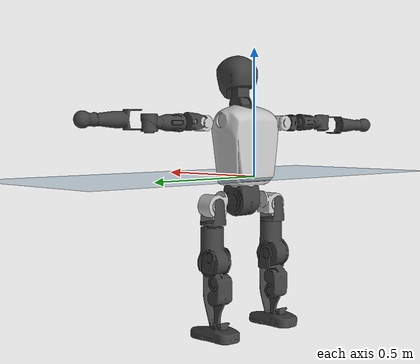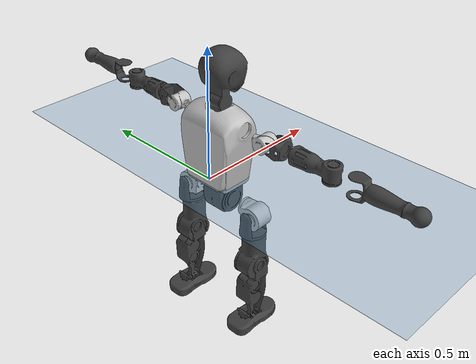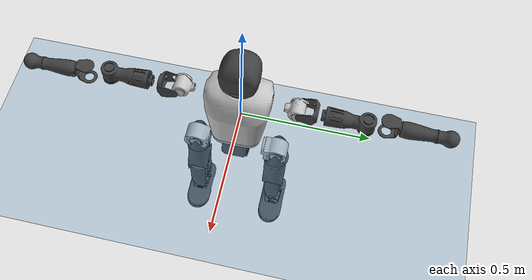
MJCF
<mujoco model="T1">
  <compiler angle="radian" assetdir="assets" balanceinertia="true" inertiafromgeom="false"/>

  <option timestep="0.005" density="1.2" viscosity="2e-05"/>

  <size nkey="1"/>

  <visual>
    <quality shadowsize="8192"/>
    <map shadowclip="0.5"/>
  </visual>

  <default>
    <default class="/">
      <joint armature="0.01" damping="0.01" frictionloss="0.1"/>
      <geom contype="0" conaffinity="0" group="1" solref="-1000 -80"/>
      <site size="0.01 0.005 0.005" group="5"/>
      <general forcelimited="true" biastype="affine" gainprm="25" biasprm="0 -25 -0.6"/>
      <default class="t1">
        <geom rgba="0.25 0.25 0.25 1"/>
        <default class="visual">
          <geom type="mesh" group="2"/>
        </default>
        <default class="collision">
          <geom group="3"/>
        </default>
        <default class="foot">
          <geom size="0.1115 0.05 0.015" type="box" condim="6" group="4" priority="1" solimp="0.015 1 0.015"/>
        </default>
        <default class="reward_collision_sphere">
          <geom group="5" rgba="1 0 0 1"/>
        </default>
      </default>
    </default>
  </default>

  <asset>
    <texture type="skybox" colorspace="auto" name="//unnamed_texture_0" builtin="gradient" rgb1="0.95 0.95 0.95" rgb2="0.95 0.95 0.95" width="100" height="600"/>
    <texture type="2d" colorspace="auto" name="texplane" builtin="checker" rgb1="0.345 0.575 0.748" rgb2="0.345 0.575 0.748" markrgb="1 1 1" width="512" height="512"/>
    <material name="MatPlane" class="/" texture="texplane" texuniform="true" texrepeat="2 2" specular="0.9"/>
    <mesh name="Trunk" class="/" file="Trunk.stl"/>
    <mesh name="H1" class="/" file="H1.stl"/>
    <mesh name="H2" class="/" file="H2.stl"/>
    <mesh name="AL1" class="/" file="AL1.stl"/>
    <mesh name="AL2" class="/" file="AL2.stl"/>
    <mesh name="AL3" class="/" file="AL3.stl"/>
    <mesh name="left_hand_link" class="/" file="left_hand_link.stl"/>
    <mesh name="AR1" class="/" file="AR1.stl"/>
    <mesh name="AR2" class="/" file="AR2.stl"/>
    <mesh name="AR3" class="/" file="AR3.stl"/>
    <mesh name="right_hand_link" class="/" file="right_hand_link.stl"/>
    <mesh name="Waist" class="/" file="Waist.stl"/>
    <mesh name="Hip_Pitch_Left" class="/" file="Hip_Pitch_Left.stl"/>
    <mesh name="Hip_Roll_Left" class="/" file="Hip_Roll_Left.stl"/>
    <mesh name="Hip_Yaw_Left" class="/" file="Hip_Yaw_Left.stl"/>
    <mesh name="Shank_Left" class="/" file="Shank_Left.stl"/>
    <mesh name="Ankle_Cross_Left" class="/" file="Ankle_Cross_Left.stl"/>
    <mesh name="left_foot_link" class="/" file="left_foot_link.stl"/>
    <mesh name="Hip_Pitch_Right" class="/" file="Hip_Pitch_Right.stl"/>
    <mesh name="Hip_Roll_Right" class="/" file="Hip_Roll_Right.stl"/>
    <mesh name="Hip_Yaw_Right" class="/" file="Hip_Yaw_Right.stl"/>
    <mesh name="Shank_Right" class="/" file="Shank_Right.stl"/>
    <mesh name="Ankle_Cross_Right" class="/" file="Ankle_Cross_Right.stl"/>
    <mesh name="right_foot_link" class="/" file="right_foot_link.stl"/>
  </asset>

  <worldbody>
    <geom name="floor" class="/" size="100 100 0.125" type="plane" group="0" material="MatPlane"/>
    <light name="toplight_shadow" class="/" pos="0 0 5" dir="0.0990148 0.0990148 -0.990148" type="directional" ambient="0.04 0.04 0.04" diffuse="0.55 0.55 0.55" specular="0.12 0.12 0.12"/>
    <light name="toplight_fill" class="/" pos="0 0 5" dir="0.0990148 0.0990148 -0.990148" type="directional" castshadow="false" ambient="0.04 0.04 0.04" diffuse="0.3 0.3 0.3" specular="0.08 0.08 0.08"/>
    <body name="trunk" childclass="t1" pos="-0.000450675 0.0022795 0.00183129" quat="1 -0.0007431 -0.000378895 0.000266535">
      <inertial pos="0.0499217 -0.011281 0.0887136" quat="0.999756 -0.00465954 0.014118 -0.0163284" mass="19.4486" diaginertia="0.0996446 0.697136 0.0408678"/>
      <joint name="//unnamed_joint_0" type="free" armature="0" damping="0" frictionloss="0"/>
      <geom name="//unnamed_geom_1" class="visual" rgba="0.76 0.76 0.76 1" mesh="Trunk"/>
      <geom name="//unnamed_geom_2" class="collision" size="0.0870505 0.116067 0.174101" pos="0.0605107 0 0.111604" type="box"/>
      <geom name="//unnamed_geom_3" class="reward_collision_sphere" size="0.133477" pos="0.0605107 0 0.0930033"/>
      <geom name="//unnamed_geom_4" class="reward_collision_sphere" size="0.0174101" pos="0.0605107 0.131195 0"/>
      <geom name="//unnamed_geom_5" class="reward_collision_sphere" size="0.0174101" pos="0.0605107 -0.131195 0"/>
      <geom name="//unnamed_geom_6" class="reward_collision_sphere" size="0.0174101" pos="0.0605107 0.165152 0.167406"/>
      <geom name="//unnamed_geom_7" class="reward_collision_sphere" size="0.0174101" pos="0.0605107 -0.165152 0.167406"/>
      <site name="imu" pos="0.0233149 0.0180331 -0.00434017" size="0.0116067"/>
      <camera name="track" pos="0 -3.08695 0" quat="0.707107 0.707107 0 0" mode="trackcom"/>
      <camera name="ego_camera" pos="0.123039 0 0.390614" quat="-0.5 -0.5 0.5 0.5"/>
      <body name="H1" pos="0.064732 0.00824065 0.216965" quat="1 -4.33284e-05 0.000310805 0.00017241">
        <inertial pos="-0.00230748 -0.0135258 0.053269" quat="0.788867 0.00428974 -0.00412101 0.614535" mass="0.738788" diaginertia="0.00026487 0.00208974 0.000101307"/>
        <joint name="AAHead_yaw" pos="0 0 0" axis="-0.00686537 0.0116345 0.999909" range="-1.57752 1.75749" armature="0.0101768" damping="0" frictionloss="0.184497"/>
        <geom name="//unnamed_geom_8" class="visual" mesh="H1"/>
        <body name="H2" pos="-0.00106 0.00201192 0.0654774" quat="1 5.14627e-05 0.000154659 0.000869041">
          <inertial pos="0.00908859 0.0114708 0.0938493" quat="0.981038 0.13381 -0.076033 -0.117807" mass="1.01179" diaginertia="0.00212346 0.017208 0.00112175"/>
          <joint name="Head_pitch" pos="0 0 0" axis="-0.00261206 -0.999996 0.00126671" range="-1.25763 0.338972" armature="0.0110042" damping="0" frictionloss="0.148708"/>
          <geom name="//unnamed_geom_9" class="visual" mesh="H2"/>
          <geom name="//unnamed_geom_10" class="collision" size="0.0928539" pos="0.0100851 0 0.102304"/>
          <geom name="//unnamed_geom_11" class="reward_collision_sphere" size="0.104461" pos="0.0201702 0 0.0930033"/>
        </body>
      </body>
      <body name="AL1" pos="0.064186 0.168223 0.208037" quat="0.999988 -0.00100602 0.00248456 -0.00399683">
        <inertial pos="-0.000954875 0.0727594 0.00260768" quat="0.461335 0.50661 -0.516446 0.513614" mass="0.820275" diaginertia="0.00140509 0.0100949 0.000210028"/>
        <joint name="Left_Shoulder_Pitch" pos="0 0 0" axis="0.00314245 0.999994 0.00136369" stiffness="7.47966e-05" range="-3.30836 1.05676" armature="0.012027" damping="0.0122637" frictionloss="0.117957"/>
        <geom name="//unnamed_geom_12" class="visual" rgba="0.76 0.76 0.76 1" mesh="AL1"/>
        <body name="AL2" pos="7.3167e-05 0.0646568 0.00603169" quat="0.999995 0.000948564 0.000382958 -0.00289366">
          <inertial pos="-0.0056458 0.0475336 -0.00449267" quat="0.445132 0.522127 -0.523775 0.504877" mass="0.244203" diaginertia="0.000435746 0.00309323 0.0001106"/>
          <joint name="Left_Shoulder_Roll" pos="0 0 0" axis="-0.999998 0.00186497 0.000766964" range="-1.58781 1.7279" armature="0.0117191" damping="0.000448811" frictionloss="0.117217"/>
          <geom name="//unnamed_geom_13" class="visual" mesh="AL2"/>
          <body name="AL3" pos="0.0018044 0.0818486 -0.00396176" quat="1 5.03217e-05 -4.38451e-05 0.000101862">
            <inertial pos="0.0100801 0.133417 0.00485818" quat="0.718812 0.69484 -0.0198117 -0.0106778" mass="1.31466" diaginertia="0.0122675 0.101152 0.000383614"/>
            <joint name="Left_Elbow_Pitch" pos="0 0 0" axis="0.00720426 -0.999832 -0.0168462" range="-2.26814 2.07394" armature="0.0108859" damping="0" frictionloss="0.106022"/>
            <geom name="//unnamed_geom_14" class="visual" mesh="AL3"/>
            <geom name="//unnamed_geom_15" class="collision" size="0.0348202 0.0870505" pos="0 0.0771737 0" quat="0.707105 0.707108 0 0" type="cylinder"/>
            <geom name="//unnamed_geom_16" class="reward_collision_sphere" size="0.0417842"/>
            <body name="left_hand_link" pos="-0.00336133 0.217382 0.0106394" quat="1 0.000104814 -2.77377e-05 -0.000203052">
              <inertial pos="0.000890398 0.168027 0.00223276" quat="0.710661 0.703519 -0.00173836 0.00428226" mass="0.512061" diaginertia="0.00930362 0.0693502 0.000147447"/>
              <joint name="Left_Elbow_Yaw" pos="0 0 0" axis="-0.00430716 0.00968883 0.999944" range="-2.24763 -0.0221433" armature="0.0106745" damping="0.06463" frictionloss="0.0730647"/>
              <geom name="//unnamed_geom_17" class="visual" mesh="left_hand_link"/>
              <geom name="//unnamed_geom_18" class="collision" size="0.0348202 0.101559" pos="0 0.200652 0" quat="0.707105 0.707108 0 0" type="cylinder"/>
              <geom name="//unnamed_geom_19" class="reward_collision_sphere" size="0.0580337"/>
              <geom name="//unnamed_geom_20" class="reward_collision_sphere" size="0.0406236" pos="0 0.169782 0"/>
              <geom name="//unnamed_geom_21" class="reward_collision_sphere" size="0.0406236" pos="0 0.331847 0"/>
            </body>
          </body>
        </body>
      </body>
      <body name="AR1" pos="0.055293 -0.1637 0.208352" quat="0.999997 0.000231186 -0.00225545 -7.16822e-05">
        <inertial pos="0.00437673 -0.0691806 0.00993349" quat="0.504701 0.534553 -0.487215 0.471329" mass="0.717554" diaginertia="0.00138705 0.0104499 0.000181639"/>
        <joint name="Right_Shoulder_Pitch" pos="0 0 0" axis="-0.0129544 -0.99979 -0.0158861" range="-1.24321 3.27324" armature="0.0117242" damping="0.0516502" frictionloss="0.176585"/>
        <geom name="//unnamed_geom_22" class="visual" rgba="0.76 0.76 0.76 1" mesh="AR1"/>
        <body name="AR2" pos="0.00989435 -0.0718909 4.28477e-05" quat="1 0.000184966 -0.000497881 0.000469256">
          <inertial pos="0.00862177 -0.0472852 0.000697333" quat="0.523842 0.512951 -0.471298 0.490255" mass="0.247895" diaginertia="0.000382558 0.0029744 0.000111559"/>
          <joint name="Right_Shoulder_Roll" pos="0 0 0" axis="-0.999561 0.00654839 -0.0288813" range="-1.75654 1.54213" armature="0.0119947" damping="0.0642502" frictionloss="0.110853"/>
          <geom name="//unnamed_geom_23" class="visual" mesh="AR2"/>
          <body name="AR3" pos="-0.00249756 -0.0945029 0.00270794" quat="0.999997 0.00133444 -0.00179614 0.00132917">
            <inertial pos="-0.0013581 -0.132627 0.000722413" quat="0.721715 0.691923 -0.0151023 0.0118937" mass="1.49514" diaginertia="0.012542 0.119561 0.00041586"/>
            <joint name="Right_Elbow_Pitch" pos="0 0 0" axis="0.00271709 0.999944 0.0102605" range="-2.28626 2.2351" armature="0.0115388" damping="0" frictionloss="0.116172"/>
            <geom name="//unnamed_geom_24" class="visual" mesh="AR3"/>
            <geom name="//unnamed_geom_25" class="collision" size="0.0348202 0.0870505" pos="0 -0.0771737 0" quat="0.707105 0.707108 0 0" type="cylinder"/>
            <geom name="//unnamed_geom_26" class="reward_collision_sphere" size="0.0417842"/>
            <body name="right_hand_link" pos="0.00702345 -0.232776 -0.0109402" quat="0.999996 0.00135951 -0.00217777 0.00125783">
              <inertial pos="0.00246216 -0.175268 -0.00188612" quat="0.70731 0.706903 0.000620492 2.01562e-05" mass="0.490221" diaginertia="0.00801592 0.0669485 0.000147473"/>
              <joint name="Right_Elbow_Yaw" pos="0 0 0" axis="-0.00639266 0.00241682 0.999977" stiffness="0.00427256" range="-0.114023 2.39922" armature="0.0107798" damping="0.0167687" frictionloss="0.0579622"/>
              <geom name="//unnamed_geom_27" class="visual" mesh="right_hand_link"/>
              <geom name="//unnamed_geom_28" class="collision" size="0.0348202 0.101559" pos="0 -0.200652 0" quat="0.707105 0.707108 0 0" type="cylinder"/>
              <geom name="//unnamed_geom_29" class="reward_collision_sphere" size="0.0580337"/>
              <geom name="//unnamed_geom_30" class="reward_collision_sphere" size="0.0406236" pos="0 -0.169782 0"/>
              <geom name="//unnamed_geom_31" class="reward_collision_sphere" size="0.0406236" pos="0 -0.331847 0"/>
            </body>
          </body>
        </body>
      </body>
      <body name="Waist" pos="0.070287 -0.00145792 -0.0974175" quat="1 -0.000839854 -0.00019121 -0.000430995">
        <inertial pos="0.0144392 -0.000367321 0.00744375" quat="0.983314 -0.00267099 -0.181759 0.00704612" mass="4.64581" diaginertia="0.00676062 0.0481575 0.00340565"/>
        <joint name="Waist" pos="0 0 0" axis="-0.00855007 0.000597088 0.999963" range="-1.47906 1.60061" armature="0.00829889" damping="0" frictionloss="0.115167"/>
        <geom name="//unnamed_geom_32" class="visual" mesh="Waist"/>
        <body name="Hip_Pitch_Left" pos="0.00115132 0.158905 0.00825605" quat="1 0.000232834 0.000130193 9.90252e-05">
          <inertial pos="0.00205601 -0.0187956 -0.0230369" quat="0.977915 0.207123 0.0241807 -0.0140432" mass="1.42096" diaginertia="0.00192737 0.012055 0.00090012"/>
          <joint name="Left_Hip_Pitch" pos="0 0 0" axis="0.000149332 0.999997 -0.00240873" range="-1.8052 1.37453" armature="0.0053692" damping="0" frictionloss="0.103651"/>
          <geom name="//unnamed_geom_33" class="visual" rgba="0.76 0.76 0.76 1" mesh="Hip_Pitch_Left"/>
          <body name="Hip_Roll_Left" pos="-0.00964662 0.00354675 -0.0143859" quat="0.999999 0.00123927 -0.000851373 -2.71135e-05">
            <inertial pos="0.00516439 -0.000687299 -0.0535437" quat="0.731122 0.0321758 0.00428579 0.681475" mass="0.661919" diaginertia="0.00194215 0.0122622 0.000351922"/>
            <joint name="Left_Hip_Roll" pos="0 0 0" axis="-0.999138 0.0340171 -0.0237913" range="-1.57837 0.192589" armature="0.00606321" damping="0.00813845" frictionloss="0.142947"/>
            <geom name="//unnamed_geom_34" class="visual" mesh="Hip_Roll_Left"/>
            <geom name="//unnamed_geom_35" class="reward_collision_sphere" size="0.063837"/>
            <body name="Hip_Yaw_Left" pos="0.0059705 -0.0028457 -0.0864756" quat="1 0.000201663 0.000152935 -0.00024327">
              <inertial pos="0.00112905 -0.0014965 -0.0829531" quat="0.697886 -0.0313272 -0.0276311 0.71499" mass="3.35854" diaginertia="0.0257387 0.24362 0.00172796"/>
              <joint name="Left_Hip_Yaw" pos="0 0 0" axis="0.000455203 -0.000269624 -1" range="-0.911791 0.823568" armature="0.0125762" damping="0.0178455" frictionloss="0.109364"/>
              <geom name="//unnamed_geom_36" class="visual" mesh="Hip_Yaw_Left"/>
              <geom name="//unnamed_geom_37" class="collision" size="0.0580337 0.0928539" type="cylinder"/>
              <body name="Shank_Left" pos="-0.0250373 -0.00121875 -0.112524" quat="1 7.9315e-06 2.8709e-05 4.64501e-05">
                <inertial pos="-0.00555455 -0.00794881 -0.124714" quat="0.997402 0.00164156 -0.0261491 0.0670986" mass="3.02729" diaginertia="0.0356648 0.29191 0.00125122"/>
                <joint name="Left_Knee_Pitch" pos="0 0 0" axis="0.0103289 0.999939 -0.00385005" range="-0.077004 2.4063" armature="0.0113634" damping="0" frictionloss="0.11878"/>
                <geom name="//unnamed_geom_38" class="visual" mesh="Shank_Left"/>
                <geom name="//unnamed_geom_39" class="collision" size="0.0580337 0.0870505" pos="0 0 -0.111604" type="cylinder"/>
                <geom name="//unnamed_geom_40" class="reward_collision_sphere" size="0.0754438"/>
                <body name="Ankle_Cross_Left" pos="0.0012844 -0.00187868 -0.269789" quat="1 -0.000551695 0.000265958 -0.000272804">
                  <inertial pos="-0.000436661 -0.00673399 -0.0118449" quat="0.442346 0.578529 0.534904 0.428382" mass="0.102113" diaginertia="2.6777e-05 0.000236966 7.73811e-06"/>
                  <joint name="Left_Ankle_Pitch" pos="0 0 0" axis="2.53442e-05 0.999999 0.00105796" range="-1.06606 0.348095" armature="0.0137786" damping="0.00788826" frictionloss="0.10757"/>
                  <geom name="//unnamed_geom_41" class="visual" mesh="Ankle_Cross_Left"/>
                  <body name="left_foot_link" pos="0.0018973 0.00604052 -0.0195005" quat="0.999998 0.00153728 -0.000629605 -0.000774317">
                    <inertial pos="0.00681313 0.00018463 -0.000538239" quat="0.00474126 0.62526 -0.000389101 0.780402" mass="1.20978" diaginertia="0.00347738 0.0217726 0.00144119"/>
                    <joint name="Left_Ankle_Roll" pos="0 0 0" axis="-0.999969 0.00607437 -0.00502069" stiffness="0.000608437" range="-0.468026 0.433315" armature="0.0116513" damping="0.00848894" frictionloss="0.112848"/>
                    <geom name="//unnamed_geom_42" class="visual" mesh="left_foot_link"/>
                    <geom name="left_foot" class="foot" size="0.10728 0.0360758 0.0200542" pos="0.0100851 0 -0.0139505"/>
                    <geom name="//unnamed_geom_44" class="reward_collision_sphere" size="0.060355" pos="0.0100851 0 -0.0139505"/>
                    <geom name="//unnamed_geom_45" class="reward_collision_sphere" size="0.0348202" pos="0.0958087 -0.0354999 -0.0139505"/>
                    <geom name="//unnamed_geom_46" class="reward_collision_sphere" size="0.0348202" pos="-0.0705959 -0.0354999 -0.0139505"/>
                    <site name="left_foot" class="foot" pos="0.0100851 0 -0.0139505" size="0.0116067"/>
                  </body>
                </body>
              </body>
            </body>
          </body>
        </body>
        <body name="Hip_Pitch_Right" pos="-0.000193029 -0.164889 -0.00112475" quat="0.999989 -0.00157561 -0.00438672 0.000529809">
          <inertial pos="0.00819903 0.0132403 -0.0254991" quat="0.973679 -0.227332 0.0163 0.00183801" mass="1.46554" diaginertia="0.00173657 0.0119737 0.000919316"/>
          <joint name="Right_Hip_Pitch" pos="0 0 0" axis="-0.000976487 -1 7.19309e-05" range="-1.56667 2.01952" armature="0.0150435" damping="0" frictionloss="0.120373"/>
          <geom name="//unnamed_geom_47" class="visual" rgba="0.76 0.76 0.76 1" mesh="Hip_Pitch_Right"/>
          <body name="Hip_Roll_Right" pos="-0.0101107 0.00265508 -0.0109966" quat="0.999998 -0.00136341 0.0013136 -0.000651849">
            <inertial pos="0.00238325 -0.00211409 -0.0554293" quat="0.685533 -0.00904903 -0.0503261 0.726244" mass="0.630639" diaginertia="0.00182211 0.0121055 0.000361294"/>
            <joint name="Right_Hip_Roll" pos="0 0 0" axis="-0.999832 -0.00729072 0.0167949" range="-0.431129 1.57438" armature="0.0116025" damping="0" frictionloss="0.0915828"/>
            <geom name="//unnamed_geom_48" class="visual" mesh="Hip_Roll_Right"/>
            <geom name="//unnamed_geom_49" class="reward_collision_sphere" size="0.063837"/>
            <body name="Hip_Yaw_Right" pos="0.00382931 0.000868044 -0.0748675" quat="1 3.2429e-05 0.000377407 3.81945e-07">
              <inertial pos="-0.00500752 0.00421864 -0.073061" quat="0.719049 -0.0338092 -0.0394353 0.693016" mass="3.33923" diaginertia="0.0270757 0.205554 0.00189141"/>
              <joint name="Right_Hip_Yaw" pos="0 0 0" axis="0.0121138 -0.0584419 -0.998217" range="-1.00308 0.97837" armature="0.00669303" damping="0.0585791" frictionloss="0.113958"/>
              <geom name="//unnamed_geom_50" class="visual" mesh="Hip_Yaw_Right"/>
              <geom name="//unnamed_geom_51" class="collision" size="0.0580337 0.0928539" type="cylinder"/>
              <body name="Shank_Right" pos="-0.00893687 -0.00176372 -0.132427" quat="0.999997 0.00170735 0.00125785 0.00117196">
                <inertial pos="-0.00734473 0.00112464 -0.106695" quat="0.999171 0.00341895 -0.0276675 -0.0296779" mass="2.40687" diaginertia="0.0318516 0.277411 0.00114639"/>
                <joint name="Right_Knee_Pitch" pos="0 0 0" axis="-0.0267793 -0.999266 -0.027376" range="-2.53285 -0.0545851" armature="0.00538018" damping="0" frictionloss="0.117052"/>
                <geom name="//unnamed_geom_52" class="visual" mesh="Shank_Right"/>
                <geom name="//unnamed_geom_53" class="collision" size="0.0580337 0.0870505" pos="0 0 -0.111604" type="cylinder"/>
                <geom name="//unnamed_geom_54" class="reward_collision_sphere" size="0.0754438"/>
                <body name="Ankle_Cross_Right" pos="0.00491523 -0.00133141 -0.259113" quat="1 -0.000507205 0.000297064 0.000384885">
                  <inertial pos="-0.00527624 0.00554785 -0.00773716" quat="0.442014 0.544454 0.550905 0.452435" mass="0.105171" diaginertia="2.85376e-05 0.000211022 7.19481e-06"/>
                  <joint name="Right_Ankle_Pitch" pos="0 0 0" axis="0.020097 -0.999795 0.00236379" stiffness="0.0406369" range="-0.180684 1.04383" armature="0.0114774" damping="0.00778973" frictionloss="0.117933"/>
                  <geom name="//unnamed_geom_55" class="visual" mesh="Ankle_Cross_Right"/>
                  <body name="right_foot_link" pos="-0.00947175 -0.000524671 -0.00631038" quat="1 9.50737e-05 -0.00024353 0.000300046">
                    <inertial pos="0.0107154 0.000832365 -0.00812561" quat="-0.0041116 0.619056 -0.00138993 0.785335" mass="1.10024" diaginertia="0.00284646 0.0232463 0.0015842"/>
                    <joint name="Right_Ankle_Roll" pos="0 0 0" axis="-0.999575 0.0160731 -0.0243147" range="-0.235199 0.432072" armature="0.0123695" damping="0.0498825" frictionloss="0.119811"/>
                    <geom name="//unnamed_geom_56" class="visual" mesh="right_foot_link"/>
                    <geom name="right_foot" class="foot" size="0.0872741 0.0612752 0.0186434" pos="0.0100851 0 -0.0139505"/>
                    <geom name="//unnamed_geom_58" class="reward_collision_sphere" size="0.0464269"/>
                    <geom name="//unnamed_geom_59" class="reward_collision_sphere" size="0.0348202" pos="0.0100851 0 -0.0139505"/>
                    <geom name="//unnamed_geom_60" class="reward_collision_sphere" size="0.0348202" pos="0.0958087 0.0354999 -0.0139505"/>
                    <geom name="//unnamed_geom_61" class="reward_collision_sphere" size="0.0348202" pos="-0.0705959 0.0354999 -0.0139505"/>
                    <site name="right_foot" class="foot" pos="0.0100851 0 -0.0139505" size="0.0116067"/>
                  </body>
                </body>
              </body>
            </body>
          </body>
        </body>
      </body>
    </body>
  </worldbody>

  <contact>
    <pair class="/" geom1="floor" geom2="left_foot" name="//unnamed_contact_0"/>
    <pair class="/" geom1="floor" geom2="right_foot" name="//unnamed_contact_1"/>
  </contact>

  <actuator>
    <general name="AAHead_yaw" class="/" joint="AAHead_yaw" forcerange="-7.80499 7.80499" gainprm="33.9347" biasprm="0 -33.9347 -0.685374"/>
    <general name="Head_pitch" class="/" joint="Head_pitch" forcerange="-7.98292 7.98292" gainprm="33.9347" biasprm="0 -33.9347 -0.685374"/>
    <general name="Left_Shoulder_Pitch" class="/" joint="Left_Shoulder_Pitch" forcerange="-24.5747 24.5747" gainprm="33.9347" biasprm="0 -33.9347 -0.685374"/>
    <general name="Left_Shoulder_Roll" class="/" joint="Left_Shoulder_Roll" forcerange="-22.0412 22.0412" gainprm="33.9347" biasprm="0 -33.9347 -0.685374"/>
    <general name="Left_Elbow_Pitch" class="/" joint="Left_Elbow_Pitch" forcerange="-21.2842 21.2842" gainprm="33.9347" biasprm="0 -33.9347 -0.685374"/>
    <general name="Left_Elbow_Yaw" class="/" joint="Left_Elbow_Yaw" forcerange="-22.2869 22.2869" gainprm="33.9347" biasprm="0 -33.9347 -0.685374"/>
    <general name="Right_Shoulder_Pitch" class="/" joint="Right_Shoulder_Pitch" forcerange="-19.7661 19.7661" gainprm="33.9347" biasprm="0 -33.9347 -0.685374"/>
    <general name="Right_Shoulder_Roll" class="/" joint="Right_Shoulder_Roll" forcerange="-24.3178 24.3178" gainprm="33.9347" biasprm="0 -33.9347 -0.685374"/>
    <general name="Right_Elbow_Pitch" class="/" joint="Right_Elbow_Pitch" forcerange="-13.2375 13.2375" gainprm="33.9347" biasprm="0 -33.9347 -0.685374"/>
    <general name="Right_Elbow_Yaw" class="/" joint="Right_Elbow_Yaw" forcerange="-19.275 19.275" gainprm="33.9347" biasprm="0 -33.9347 -0.685374"/>
    <general name="Waist" class="/" joint="Waist" forcerange="-32.1372 32.1372" gainprm="33.9347" biasprm="0 -33.9347 -0.685374"/>
    <general name="Left_Hip_Pitch" class="/" joint="Left_Hip_Pitch" forcerange="-55.7674 55.7674" gainprm="33.9347" biasprm="0 -33.9347 -0.685374"/>
    <general name="Left_Hip_Roll" class="/" joint="Left_Hip_Roll" forcerange="-25.5071 25.5071" gainprm="33.9347" biasprm="0 -33.9347 -0.685374"/>
    <general name="Left_Hip_Yaw" class="/" joint="Left_Hip_Yaw" forcerange="-45.0542 45.0542" gainprm="33.9347" biasprm="0 -33.9347 -0.685374"/>
    <general name="Left_Knee_Pitch" class="/" joint="Left_Knee_Pitch" forcerange="-71.0596 71.0596" gainprm="33.9347" biasprm="0 -33.9347 -0.685374"/>
    <general name="Left_Ankle_Pitch" class="/" joint="Left_Ankle_Pitch" forcerange="-21.9099 21.9099" gainprm="33.9347" biasprm="0 -33.9347 -0.685374"/>
    <general name="Left_Ankle_Roll" class="/" joint="Left_Ankle_Roll" forcerange="-11.7161 11.7161" gainprm="33.9347" biasprm="0 -33.9347 -0.685374"/>
    <general name="Right_Hip_Pitch" class="/" joint="Right_Hip_Pitch" forcerange="-52.5652 52.5652" gainprm="33.9347" biasprm="0 -33.9347 -0.685374"/>
    <general name="Right_Hip_Roll" class="/" joint="Right_Hip_Roll" forcerange="-36.9538 36.9538" gainprm="33.9347" biasprm="0 -33.9347 -0.685374"/>
    <general name="Right_Hip_Yaw" class="/" joint="Right_Hip_Yaw" forcerange="-21.3697 21.3697" gainprm="33.9347" biasprm="0 -33.9347 -0.685374"/>
    <general name="Right_Knee_Pitch" class="/" joint="Right_Knee_Pitch" forcerange="-69.3924 69.3924" gainprm="33.9347" biasprm="0 -33.9347 -0.685374"/>
    <general name="Right_Ankle_Pitch" class="/" joint="Right_Ankle_Pitch" forcerange="-23.2186 23.2186" gainprm="33.9347" biasprm="0 -33.9347 -0.685374"/>
    <general name="Right_Ankle_Roll" class="/" joint="Right_Ankle_Roll" forcerange="-20.6397 20.6397" gainprm="33.9347" biasprm="0 -33.9347 -0.685374"/>
  </actuator>

  <sensor>
    <gyro site="imu" name="imu_angular_velocity"/>
    <velocimeter site="imu" name="imu_linear_velocity"/>
    <framelinvel objtype="site" objname="left_foot" name="left_foot_global_linear_velocity"/>
    <framelinvel objtype="site" objname="right_foot" name="right_foot_global_linear_velocity"/>
  </sensor>

  <keyframe>
    <key name="home" qpos="0 0 0.6385 1 0 0 0 0 0 0 1.4 0 -0.4 0 -1.4 0 0.4 0 -0.4 0 0 0.8 -0.4 0 0.4 0 0 -0.8 0.4 0"/>
  </keyframe>
</mujoco>
